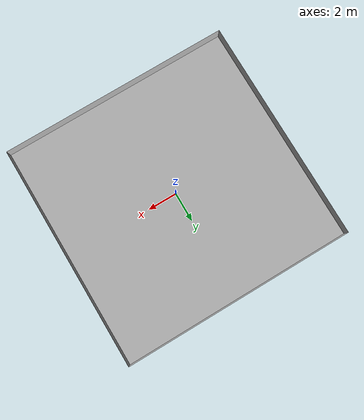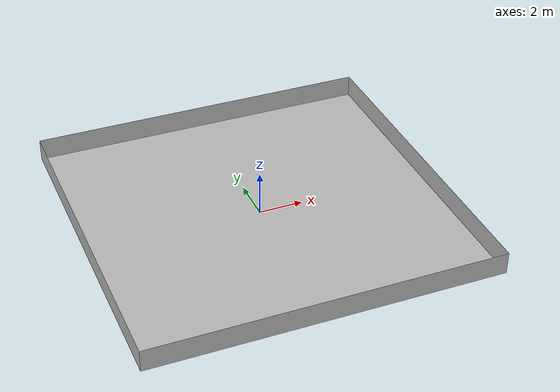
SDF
<?xml version='1.0' encoding='utf-8'?>
<sdf version="1.4">
<world name="thunder_hill_pro_cw">
  <scene>
    <ambient>0.5 0.5 0.5 1.0</ambient>
    <shadows>0</shadows>
    <sky />
  </scene>
  <include>
    <uri>model://sun</uri>
    <pose>0.0 0.0 15.0 0 0 0</pose>
    <cast_shadows>false</cast_shadows>
    <attenuation>
      <constant>0.5</constant>
      <linear>0.01</linear>
      <quadratic>0.0</quadratic>
      <range>100</range>
    </attenuation>
  </include>
  <light name="Light 1" type="point">
         <pose>0 0 15 0 0 0</pose>
         <diffuse>0.225 0.225 0.225 1</diffuse>
         <specular>.1 .1 .1 1</specular>
         <attenuation>
                <constant>0.4</constant>
                <linear>0.01</linear>
                <quadratic>0.00</quadratic>
                <range>50</range>
         </attenuation>
         <direction>0 0 -1</direction>
         <cast_shadows>false</cast_shadows>
  </light>
  <include>
    <uri>model://models/thunder_hill_pro_cw</uri>
    <pose>0 0 0 0 0 0</pose>
    <name>racetrack</name>
  </include>
</world>
</sdf>

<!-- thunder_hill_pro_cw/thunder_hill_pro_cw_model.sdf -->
<sdf version="1.4">
<model name="template_model">
<link name="track">
<collision name="collision">
<pose>0 0 0 0 0 0</pose>
<geometry>
<mesh>
<uri>model://meshes/thunder_hill_pro_cw/thunder_hill_pro_cw_collision.dae</uri>
</mesh>
</geometry>
</collision>
<visual name="visual">
<pose>0 0 0 0 0 0</pose>
<geometry>
<mesh>
<uri>model://meshes/thunder_hill_pro_cw/thunder_hill_pro_cw.dae</uri>
</mesh>
</geometry>
</visual>
</link>
<static>1</static>
</model>
</sdf>
